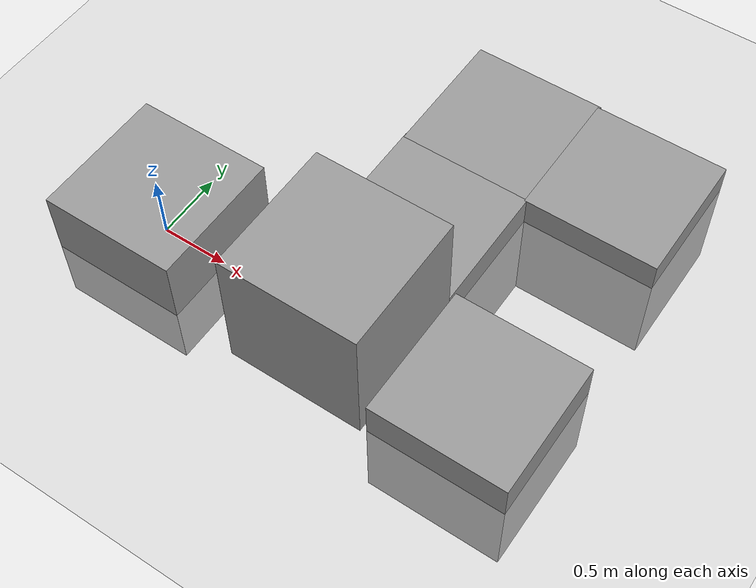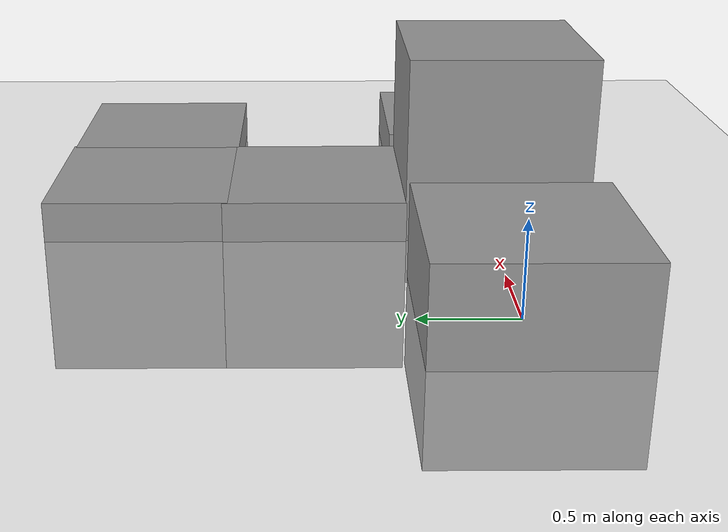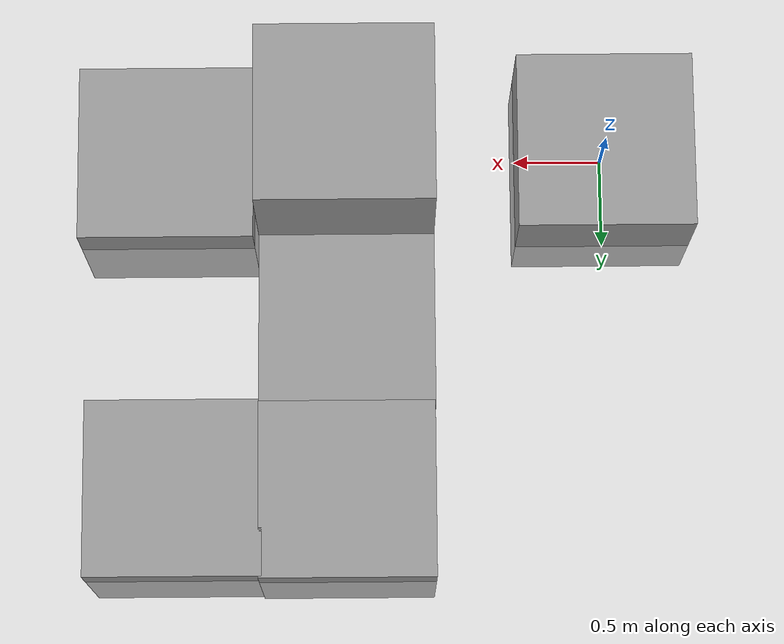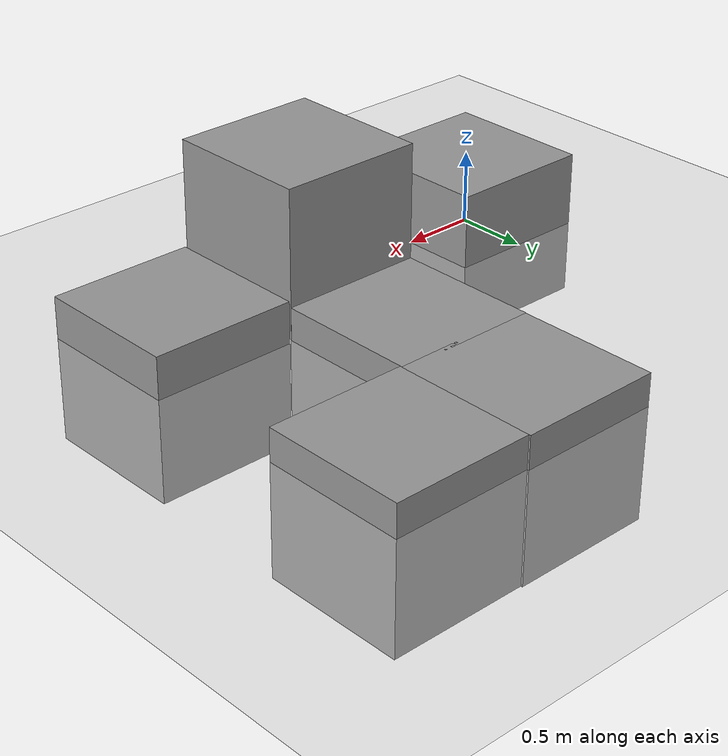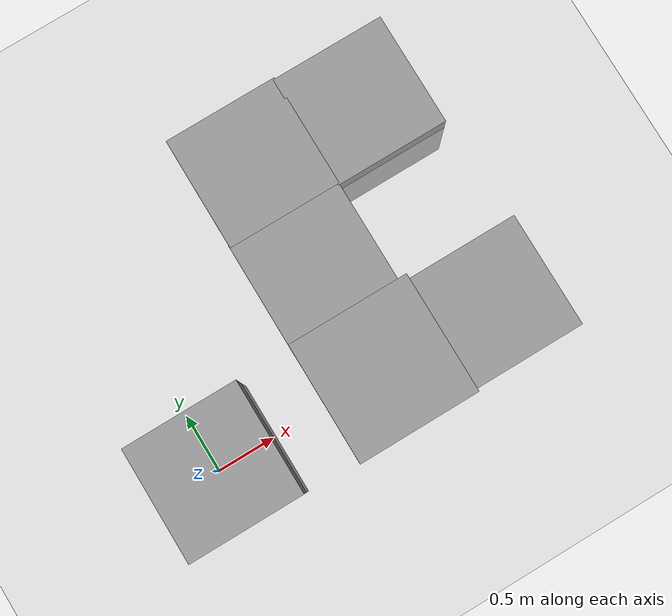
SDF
<sdf version='1.7'>
  <world name='sample'>
    <light name='sun' type='directional'>
      <cast_shadows>1</cast_shadows>
      <pose>0 0 10 0 -0 0</pose>
      <diffuse>0.8 0.8 0.8 1</diffuse>
      <specular>0.2 0.2 0.2 1</specular>
      <attenuation>
        <range>1000</range>
        <constant>0.9</constant>
        <linear>0.01</linear>
        <quadratic>0.001</quadratic>
      </attenuation>
      <direction>-0.5 0.1 -0.9</direction>
      <spot>
        <inner_angle>0</inner_angle>
        <outer_angle>0</outer_angle>
        <falloff>0</falloff>
      </spot>
    </light>
    <model name='ground_plane'>
      <static>1</static>
      <link name='link'>
        <collision name='collision'>
          <geometry>
            <plane>
              <normal>0 0 1</normal>
              <size>100 100</size>
            </plane>
          </geometry>
          <surface>
            <contact>
              <collide_bitmask>65535</collide_bitmask>
              <ode/>
            </contact>
            <friction>
              <ode>
                <mu>100</mu>
                <mu2>50</mu2>
              </ode>
              <torsional>
                <ode/>
              </torsional>
            </friction>
            <bounce/>
          </surface>
          <max_contacts>10</max_contacts>
        </collision>
        <visual name='visual'>
          <cast_shadows>0</cast_shadows>
          <geometry>
            <plane>
              <normal>0 0 1</normal>
              <size>100 100</size>
            </plane>
          </geometry>
          <material>
            <script>
              <uri>file://media/materials/scripts/gazebo.material</uri>
              <name>Gazebo/Grey</name>
            </script>
          </material>
        </visual>
        <self_collide>0</self_collide>
        <enable_wind>0</enable_wind>
        <kinematic>0</kinematic>
      </link>
    </model>
    <gravity>0 0 -9.8</gravity>
    <magnetic_field>6e-06 2.3e-05 -4.2e-05</magnetic_field>
    <atmosphere type='adiabatic'/>
    <physics type='ode'>
      <max_step_size>0.001</max_step_size>
      <real_time_factor>1</real_time_factor>
      <real_time_update_rate>1000</real_time_update_rate>
    </physics>
    <scene>
      <ambient>0.4 0.4 0.4 1</ambient>
      <background>0.7 0.7 0.7 1</background>
      <shadows>1</shadows>
    </scene>
    <wind/>
    <spherical_coordinates>
      <surface_model>EARTH_WGS84</surface_model>
      <latitude_deg>0</latitude_deg>
      <longitude_deg>0</longitude_deg>
      <elevation>0</elevation>
      <heading_deg>0</heading_deg>
    </spherical_coordinates>
    <model name='unit_box'>
      <pose>1.47246 -0.026395 0.5 0 -0 0</pose>
       <static>1</static>
      <link name='link'>
        <inertial>
          <mass>1</mass>
          <inertia>
            <ixx>0.166667</ixx>
            <ixy>0</ixy>
            <ixz>0</ixz>
            <iyy>0.166667</iyy>
            <iyz>0</iyz>
            <izz>0.166667</izz>
          </inertia>
          <pose>0 0 0 0 -0 0</pose>
        </inertial>
        <collision name='collision'>
          <geometry>
            <box>
              <size>1 1 1</size>
            </box>
          </geometry>
          <max_contacts>10</max_contacts>
          <surface>
            <contact>
              <ode/>
            </contact>
            <bounce/>
            <friction>
              <torsional>
                <ode/>
              </torsional>
              <ode/>
            </friction>
          </surface>
        </collision>
        <visual name='visual'>
          <geometry>
            <box>
              <size>1 1 1</size>
            </box>
          </geometry>
          <material>
            <script>
              <name>Gazebo/Grey</name>
              <uri>file://media/materials/scripts/gazebo.material</uri>
            </script>
          </material>
        </visual>
        <self_collide>0</self_collide>
        <enable_wind>0</enable_wind>
        <kinematic>0</kinematic>
      </link>
    </model>
    <model name='unit_box_clone'>
     <static>1</static>
      <pose>2.50378 -0.003121 -0.217633 0 -0 0</pose>
      <link name='link'>
        <inertial>
          <mass>1</mass>
          <inertia>
            <ixx>0.166667</ixx>
            <ixy>0</ixy>
            <ixz>0</ixz>
            <iyy>0.166667</iyy>
            <iyz>0</iyz>
            <izz>0.166667</izz>
          </inertia>
          <pose>0 0 0 0 -0 0</pose>
        </inertial>
        <collision name='collision'>
          <geometry>
            <box>
              <size>1 1 1</size>
            </box>
          </geometry>
          <max_contacts>10</max_contacts>
          <surface>
            <contact>
              <ode/>
            </contact>
            <bounce/>
            <friction>
              <torsional>
                <ode/>
              </torsional>
              <ode/>
            </friction>
          </surface>
        </collision>
        <visual name='visual'>
          <geometry>
            <box>
              <size>1 1 1</size>
            </box>
          </geometry>
          <material>
            <script>
              <name>Gazebo/Grey</name>
              <uri>file://media/materials/scripts/gazebo.material</uri>
            </script>
          </material>
        </visual>
        <self_collide>0</self_collide>
        <enable_wind>0</enable_wind>
        <kinematic>0</kinematic>
      </link>
    </model>
    <model name='unit_box_clone_0'>
     <static>1</static>
      <pose>1.47173 0.96732 -0.281512 0 -0 0</pose>
      <link name='link'>
        <inertial>
          <mass>1</mass>
          <inertia>
            <ixx>0.166667</ixx>
            <ixy>0</ixy>
            <ixz>0</ixz>
            <iyy>0.166667</iyy>
            <iyz>0</iyz>
            <izz>0.166667</izz>
          </inertia>
          <pose>0 0 0 0 -0 0</pose>
        </inertial>
        <collision name='collision'>
          <geometry>
            <box>
              <size>1 1 1</size>
            </box>
          </geometry>
          <max_contacts>10</max_contacts>
          <surface>
            <contact>
              <ode/>
            </contact>
            <bounce/>
            <friction>
              <torsional>
                <ode/>
              </torsional>
              <ode/>
            </friction>
          </surface>
        </collision>
        <visual name='visual'>
          <geometry>
            <box>
              <size>1 1 1</size>
            </box>
          </geometry>
          <material>
            <script>
              <name>Gazebo/Grey</name>
              <uri>file://media/materials/scripts/gazebo.material</uri>
            </script>
          </material>
        </visual>
        <self_collide>0</self_collide>
        <enable_wind>0</enable_wind>
        <kinematic>0</kinematic>
      </link>
    </model>
    <model name='unit_box_clone_0_clone'>
     <static>1</static>
      <pose>1.47521 1.93573 -0.281512 0 -0 0</pose>
      <link name='link'>
        <inertial>
          <mass>1</mass>
          <inertia>
            <ixx>0.166667</ixx>
            <ixy>0</ixy>
            <ixz>0</ixz>
            <iyy>0.166667</iyy>
            <iyz>0</iyz>
            <izz>0.166667</izz>
          </inertia>
          <pose>0 0 0 0 -0 0</pose>
        </inertial>
        <collision name='collision'>
          <geometry>
            <box>
              <size>1 1 1</size>
            </box>
          </geometry>
          <max_contacts>10</max_contacts>
          <surface>
            <contact>
              <ode/>
            </contact>
            <bounce/>
            <friction>
              <torsional>
                <ode/>
              </torsional>
              <ode/>
            </friction>
          </surface>
        </collision>
        <visual name='visual'>
          <geometry>
            <box>
              <size>1 1 1</size>
            </box>
          </geometry>
          <material>
            <script>
              <name>Gazebo/Grey</name>
              <uri>file://media/materials/scripts/gazebo.material</uri>
            </script>
          </material>
        </visual>
        <self_collide>0</self_collide>
        <enable_wind>0</enable_wind>
        <kinematic>0</kinematic>
      </link>
    </model>
    <model name='unit_box_clone_0_clone_clone'>
     <static>1</static>
      <pose>2.45568 1.92392 -0.281512 0 -0 0</pose>
      <link name='link'>
        <inertial>
          <mass>1</mass>
          <inertia>
            <ixx>0.166667</ixx>
            <ixy>0</ixy>
            <ixz>0</ixz>
            <iyy>0.166667</iyy>
            <iyz>0</iyz>
            <izz>0.166667</izz>
          </inertia>
          <pose>0 0 0 0 -0 0</pose>
        </inertial>
        <collision name='collision'>
          <geometry>
            <box>
              <size>1 1 1</size>
            </box>
          </geometry>
          <max_contacts>10</max_contacts>
          <surface>
            <contact>
              <ode/>
            </contact>
            <bounce/>
            <friction>
              <torsional>
                <ode/>
              </torsional>
              <ode/>
            </friction>
          </surface>
        </collision>
        <visual name='visual'>
          <geometry>
            <box>
              <size>1 1 1</size>
            </box>
          </geometry>
          <material>
            <script>
              <name>Gazebo/Grey</name>
              <uri>file://media/materials/scripts/gazebo.material</uri>
            </script>
          </material>
        </visual>
        <self_collide>0</self_collide>
        <enable_wind>0</enable_wind>
        <kinematic>0</kinematic>
      </link>
    </model>
    <model name='unit_box_1'>
      <static>1</static>
       <pose>0 0 0 0 -0 0</pose>
       <link name='link'>
         <inertial>
           <mass>1</mass>
           <inertia>
             <ixx>0.166667</ixx>
             <ixy>0</ixy>
             <ixz>0</ixz>
             <iyy>0.166667</iyy>
             <iyz>0</iyz>
             <izz>0.166667</izz>
           </inertia>
           <pose>0 0 0 0 -0 0</pose>
         </inertial>
         <collision name='collision'>
           <geometry>
             <box>
               <size>1 1 1</size>
             </box>
           </geometry>
           <max_contacts>10</max_contacts>
           <surface>
             <contact>
               <ode/>
             </contact>
             <bounce/>
             <friction>
               <torsional>
                 <ode/>
               </torsional>
               <ode/>
             </friction>
           </surface>
         </collision>
         <visual name='visual'>
           <geometry>
             <box>
               <size>1 1 1</size>
             </box>
           </geometry>
           <material>
             <script>
               <name>Gazebo/Grey</name>
               <uri>file://media/materials/scripts/gazebo.material</uri>
             </script>
           </material>
         </visual>
         <self_collide>0</self_collide>
         <enable_wind>0</enable_wind>
         <kinematic>0</kinematic>
       </link>
     </model>

  </world>
</sdf>
